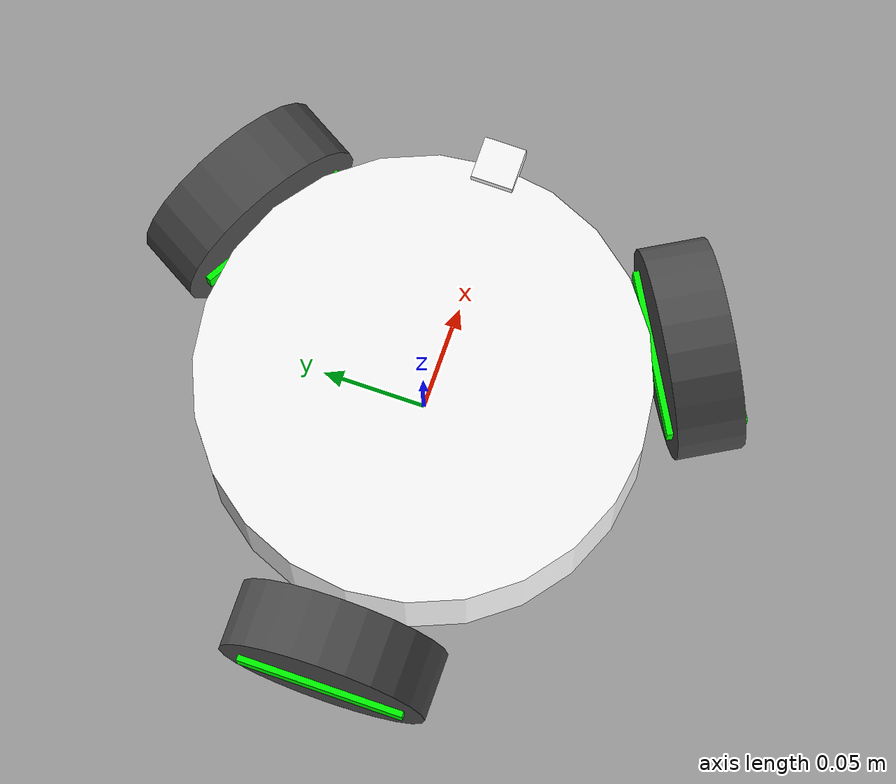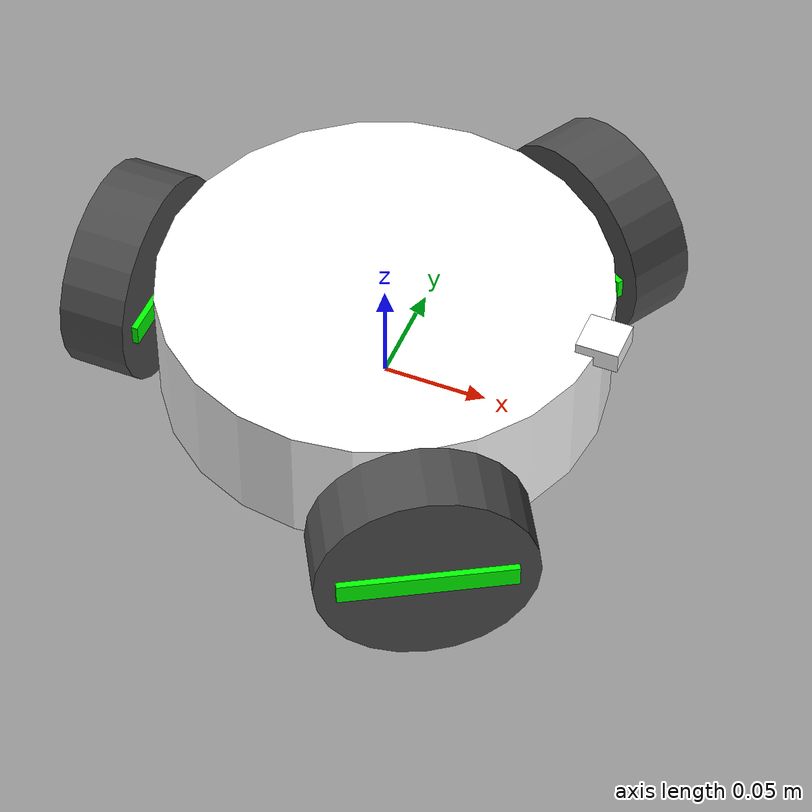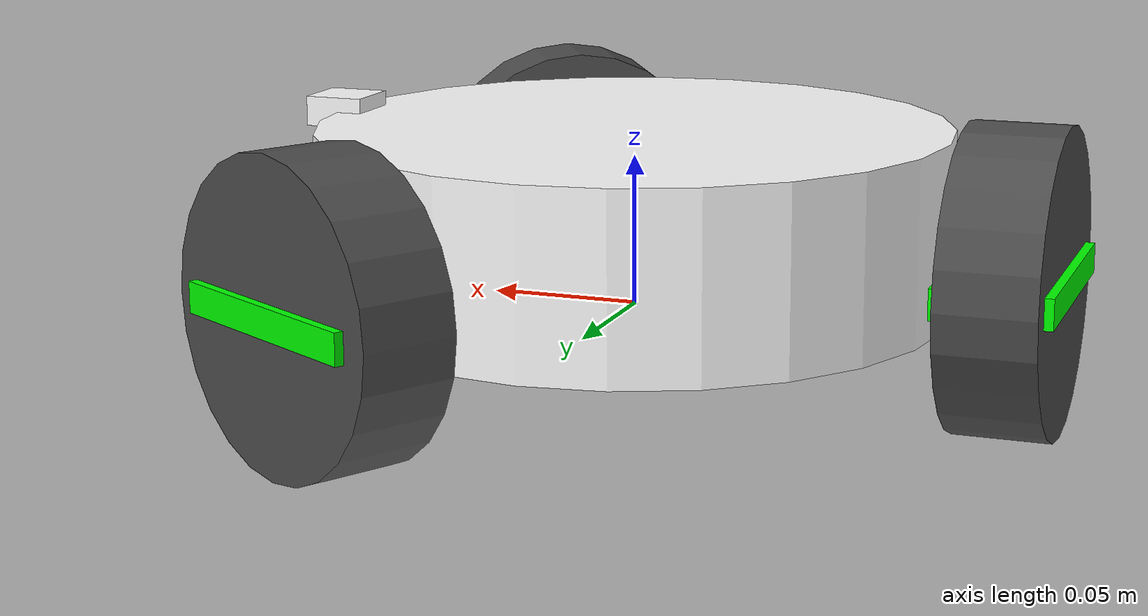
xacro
<?xml version="1.0" encoding="utf-8"?>
<robot xmlns:xacro="http://www.ros.org/wiki/xacro" name="LeKiwiSimple">

    <!-- Constants definition                                                   -->

    <xacro:property name="M_PI" value="3.141592653589793" />
    <xacro:property name="M_PI_2" value="1.5707963267948966" />

    <!-- Base size parameters (user provided) -->
    <xacro:property name="base_radius" value="0.105" />      <!-- diameter 21cm -->
    <xacro:property name="base_height" value="0.06" />       <!-- height 6cm -->
    <xacro:property name="base_mass" value="4.2" />          <!-- estimated total mass -->

    <!-- Wheel parameters (kept from original model) -->
    <xacro:property name="wheel_radius" value="0.05" />      <!-- wheel radius 5cm -->
    <xacro:property name="wheel_width" value="0.032" />      <!-- wheel width 3.2cm -->
    <xacro:property name="wheel_mass" value="1.354" />       <!-- single wheel mass -->

    <!-- 材质定义 -->
    <material name="base_color">
        <color rgba="1.0 1.0 1.0 1.0"/>
    </material>

    <material name="wheel_color">
        <color rgba="0.3 0.3 0.3 1.0" />
    </material>

    <material name="wheel_stripe_color">
        <color rgba="0.0 1.0 0.0 1.0" />  <!-- Bright green stripe for visibility -->
    </material>

    <material name="stripe_test_color">
        <color rgba="1.0 0.0 0.0 1.0" />  <!-- Red for testing -->
    </material>

    <!-- Part 1 - Base Links                                                   -->

    <!-- Virtual root node (empty link for TF tree root) -->
    <link name="base_link">
        <!-- Empty link, no inertia, satisfies KDL requirement -->
    </link>

    <!-- Simplified chassis (cylinder) -->
    <link name="simplified_base_link">
        <!-- Inertial properties -->
        <inertial>
            <origin xyz="0 0 0" rpy="0 0 0" />
            <mass value="${base_mass}" />
            <!-- Cylinder inertia tensor-->
            <inertia
                ixx="${base_mass * (3*base_radius*base_radius + base_height*base_height) / 12.0}"
                iyy="${base_mass * (3*base_radius*base_radius + base_height*base_height) / 12.0}"
                izz="${base_mass * base_radius * base_radius / 2.0}"
                ixy="0" iyz="0" ixz="0" />
        </inertial>

        <!-- Visual representation -->
        <visual>
            <origin xyz="0 0 0" rpy="0 0 0" />
            <geometry>
                <cylinder radius="${base_radius}" length="${base_height}" />
            </geometry>
            <material name="base_color" />
        </visual>

        <!-- Collision body (same as visual) -->
        <collision>
            <origin xyz="0 0 0" rpy="0 0 0" />
            <geometry>
                <cylinder radius="${base_radius}" length="${base_height}" />
            </geometry>
        </collision>
    </link>

    <!-- base_link to simplified_base_link -->
    <joint name="base_to_simplified_base_joint" type="fixed">
        <origin xyz="0 0 0.03" rpy="0 0 0" />  <!-- base center 3cm above wheels -->
        <parent link="base_link" />
        <child link="simplified_base_link" />
    </joint>

    <!-- Part 2 - Wheels (3 omni wheels)                                       -->

    <!-- Wheel macro definition -->
    <xacro:macro name="omni_wheel" params="prefix">
        <link name="${prefix}_link">
            <!-- Inertial properties (kept from original model) -->
            <inertial>
                <origin xyz="0 0 0" rpy="0 0 0" />
                <mass value="${wheel_mass}" />
                <!-- Cylinder inertia (wheel rotates around center axis) -->
                <inertia
                    ixx="${wheel_mass * (3*wheel_radius*wheel_radius + wheel_width*wheel_width) / 12.0}"
                    iyy="${wheel_mass * (3*wheel_radius*wheel_radius + wheel_width*wheel_width) / 12.0}"
                    izz="${wheel_mass * wheel_radius * wheel_radius / 2.0}"
                    ixy="0" iyz="0" ixz="0" />
            </inertial>

            <!-- Visual representation - only the wheel cylinder -->
            <visual>
                <origin xyz="0 0 0" rpy="${M_PI_2} 0 0" />
                <geometry>
                    <cylinder radius="${wheel_radius}" length="${wheel_width}" />
                </geometry>
                <material name="wheel_color_${prefix}">
                    <color rgba="0.3 0.3 0.3 1.0" />
                </material>
            </visual>

            <!-- Collision body -->
            <collision>
                <origin xyz="0 0 0" rpy="${M_PI_2} 0 0" />
                <geometry>
                    <cylinder radius="${wheel_radius}" length="${wheel_width}" />
                </geometry>
            </collision>
        </link>

        <!-- Stripe links - separate links for proper color display in RViz -->
        <link name="${prefix}_stripe_1_link">
            <inertial>
                <mass value="0.001"/>
                <origin xyz="0 0 0" rpy="0 0 0"/>
                <inertia ixx="0.000001" ixy="0" ixz="0" iyy="0.000001" iyz="0" izz="0.000001"/>
            </inertial>
            <visual>
                <origin xyz="0 0 0" rpy="0 0 0" />
                <geometry>
                    <box size="${wheel_radius*1.6} 0.003 ${wheel_radius*0.2}" />
                </geometry>
                <material name="stripe_green_${prefix}_1">
                    <color rgba="0.0 1.0 0.0 1.0" />
                </material>
            </visual>
        </link>

        <link name="${prefix}_stripe_2_link">
            <inertial>
                <mass value="0.001"/>
                <origin xyz="0 0 0" rpy="0 0 0"/>
                <inertia ixx="0.000001" ixy="0" ixz="0" iyy="0.000001" iyz="0" izz="0.000001"/>
            </inertial>
            <visual>
                <origin xyz="0 0 0" rpy="0 0 0" />
                <geometry>
                    <box size="${wheel_radius*1.6} 0.003 ${wheel_radius*0.2}" />
                </geometry>
                <material name="stripe_green_${prefix}_2">
                    <color rgba="0.0 1.0 0.0 1.0" />
                </material>
            </visual>
        </link>

        <!-- Fixed joints to attach stripes to wheel -->
        <joint name="${prefix}_stripe_1_joint" type="fixed">
            <origin xyz="0 ${wheel_width/2 + 0.0015} 0" rpy="0 0 0" />
            <parent link="${prefix}_link" />
            <child link="${prefix}_stripe_1_link" />
        </joint>

        <joint name="${prefix}_stripe_2_joint" type="fixed">
            <origin xyz="0 ${-wheel_width/2 - 0.0015} 0" rpy="0 0 0" />
            <parent link="${prefix}_link" />
            <child link="${prefix}_stripe_2_link" />
        </joint>
    </xacro:macro>

    <!-- Create three wheels -->
    <xacro:omni_wheel prefix="wheel_1" />
    <xacro:omni_wheel prefix="wheel_2" />
    <xacro:omni_wheel prefix="wheel_3" />

    <!-- Wheel 1 (rear) - based on calculation results -->
    <!-- Rear wheel parallel to Y-axis, robot front is +X direction -->
    <joint name="wheel_1_joint" type="continuous">
        <origin xyz="-0.126375 -0.000610 -0.012140"
                rpy="0 0 ${M_PI_2}" />
        <parent link="simplified_base_link" />
        <child link="wheel_1_link" />
        <axis xyz="0.0 1.0 0.0" />
        <dynamics damping="0.1" friction="0.01" />
    </joint>

    <!-- Wheel 2 (right front) - based on calculation results -->
    <joint name="wheel_2_joint" type="continuous">
        <origin xyz="0.063 -0.109 -0.012140"
                rpy="0 0 ${M_PI*2/3 + M_PI_2}" />
        <parent link="simplified_base_link" />
        <child link="wheel_2_link" />
        <axis xyz="0.0 -1.0 0.0" />
        <dynamics damping="0.1" friction="0.01" />
    </joint>

    <!-- Wheel 3 (left front) - based on calculation results -->
    <joint name="wheel_3_joint" type="continuous">
        <origin xyz="0.063 0.109 -0.012140"
                rpy="0 0 ${-M_PI*2/3 + M_PI_2}" />
        <parent link="simplified_base_link" />
        <child link="wheel_3_link" />
        <axis xyz="0.0 -1.0 0.0" />
        <dynamics damping="0.1" friction="0.01" />
    </joint>

    <!-- Part 3 - Depth Camera                                                 -->

    <!-- camera_link - Gazebo sensor attachment point -->
    <link name="camera_link">
        <inertial>
            <mass value="0.001"/>
            <origin xyz="0 0 0" rpy="0 0 0"/>
            <inertia ixx="0.000001" ixy="0" ixz="0" iyy="0.000001" iyz="0" izz="0.000001"/>
        </inertial>
        <visual>
            <origin xyz="0 0 0" rpy="0 0 0" />
            <geometry>
                <box size="0.02 0.02 0.01" />
            </geometry>
            <material name="base_color" />
        </visual>
        <collision>
            <origin xyz="0 0 0" rpy="0 0 0" />
            <geometry>
                <box size="0.02 0.02 0.01" />
            </geometry>
        </collision>
    </link>

    <!-- simplified_base_link to camera_link (on top of base cylinder, front edge) -->
    <joint name="camera_joint" type="fixed">
        <origin xyz="0.105 0.0 0.03"
                rpy="0 0 0" />
        <parent link="simplified_base_link" />
        <child link="camera_link" />
    </joint>

    <!-- camera_optical_frame - ROS standard optical coordinate system -->
    <link name="camera_optical_frame">
        <!-- Empty link for coordinate transformation -->
    </link>

    <!-- camera_link to camera_optical_frame (standard transformation) -->
    <joint name="camera_optical_frame_joint" type="fixed">
        <origin xyz="0.02 0 0 " rpy="${-M_PI_2} 0 ${-M_PI_2}" />
        <parent link="camera_link" />
        <child link="camera_optical_frame" />
    </joint>

    <!-- Part 4 - IMU                                                          -->

    <!-- imu_link - based on lekiwi_bot_imu.xacro -->
    <link name="imu_link">
        <inertial>
            <mass value="0.001"/>
            <origin xyz="0 0 0" rpy="0 0 0"/>
            <inertia ixx="0.000001" ixy="0" ixz="0" iyy="0.000001" iyz="0" izz="0.000001"/>
        </inertial>
        <collision>
            <origin xyz="0 0 0" rpy="0 0 0"/>
            <geometry>
                <box size="0.01 0.01 0.01"/>
            </geometry>
        </collision>
    </link>

    <!-- base_link to imu_link (consistent with original model) -->
    <joint name="imu_joint" type="fixed">
        <origin xyz="0 0 0.02" rpy="0 0 0" />
        <parent link="base_link" />
        <child link="imu_link" />
    </joint>

    <!-- ros2_control configuration                                            -->

    <ros2_control name="GazeboSystem" type="system">
        <hardware>
            <plugin>gazebo_ros2_control/GazeboSystem</plugin>
        </hardware>

        <!-- Wheel 1 -->
        <joint name="wheel_1_joint">
            <command_interface name="velocity">
                <param name="min">-100</param>
                <param name="max">100</param>
            </command_interface>
            <state_interface name="position"/>
            <state_interface name="velocity"/>
            <param name="initial_position">0.0</param>
        </joint>

        <!-- Wheel 2 -->
        <joint name="wheel_2_joint">
            <command_interface name="velocity">
                <param name="min">-100</param>
                <param name="max">100</param>
            </command_interface>
            <state_interface name="position"/>
            <state_interface name="velocity"/>
            <param name="initial_position">0.0</param>
        </joint>

        <!-- Wheel 3 -->
        <joint name="wheel_3_joint">
            <command_interface name="velocity">
                <param name="min">-100</param>
                <param name="max">100</param>
            </command_interface>
            <state_interface name="position"/>
            <state_interface name="velocity"/>
            <param name="initial_position">0.0</param>
        </joint>
    </ros2_control>

</robot>
